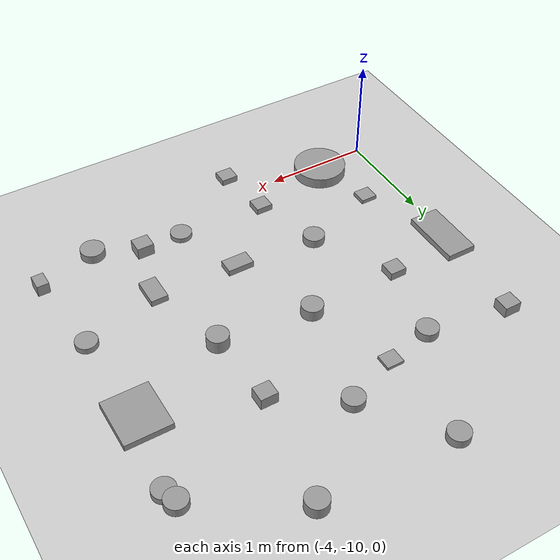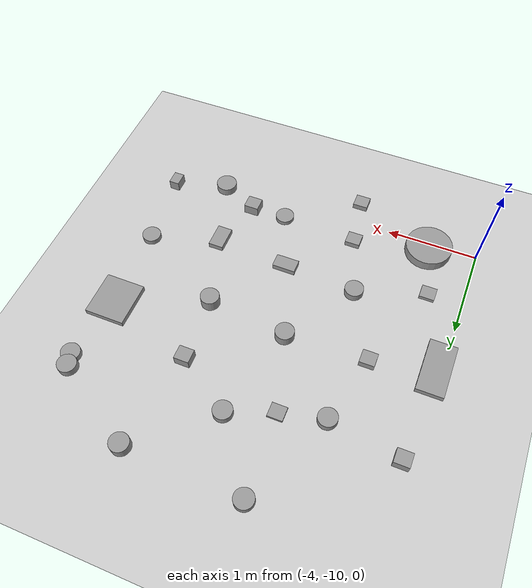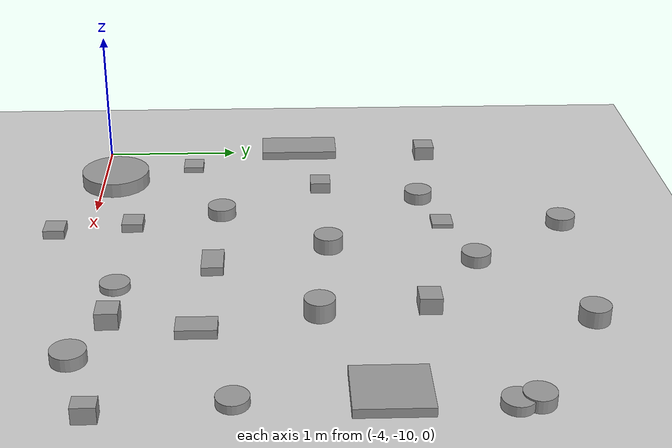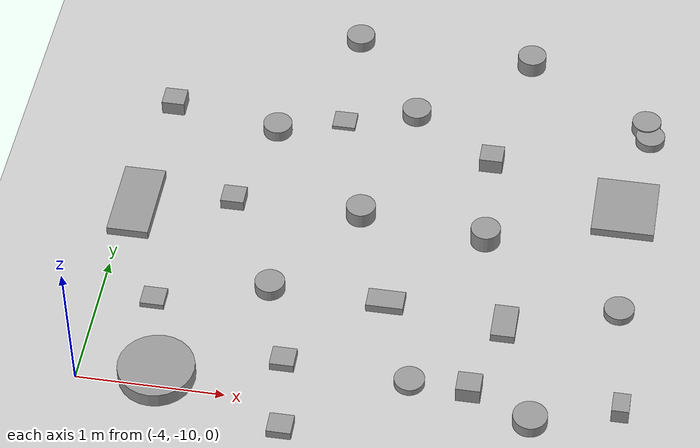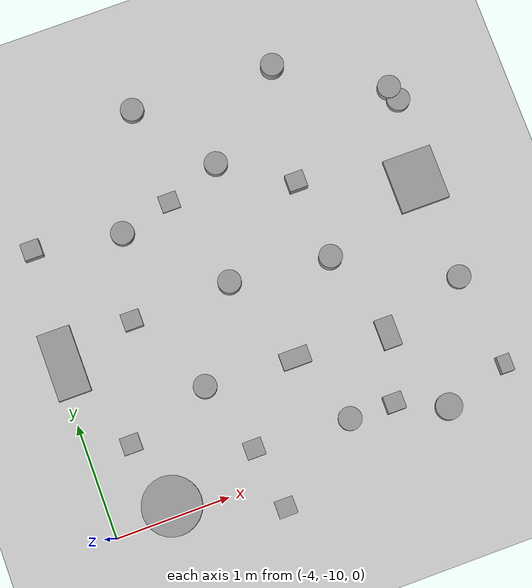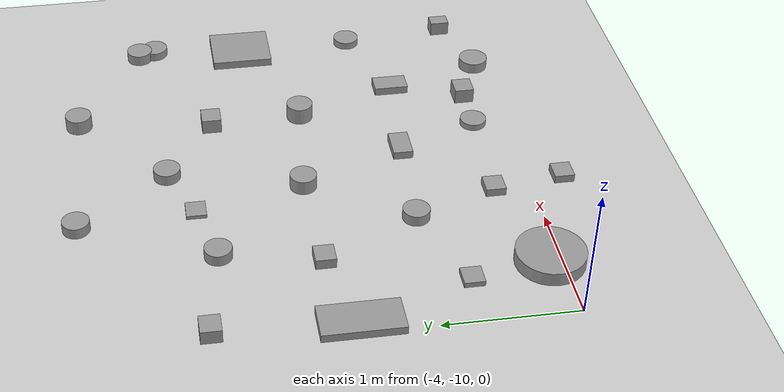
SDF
<sdf version="1.7">
 <world name="default">
  <model name="ground_plane">
   <static>1</static>
   <link name="link">
    <collision name="collision">
     <geometry><plane><normal>0 0 1</normal><size>100 100</size></plane></geometry>
     <surface><friction><ode><mu>100</mu><mu2>50</mu2></ode></friction></surface>
    </collision>
    <visual name="visual">
     <cast_shadows>0</cast_shadows>
     <geometry><plane><normal>0 0 1</normal><size>100 100</size></plane></geometry>
     <material>
      <script><uri>file://media/materials/scripts/gazebo.material</uri><name>Gazebo/Grey</name></script>
     </material>
    </visual>
   </link>
  </model>
  <model name="simple_shapes1">
   <link name="link_2">
    <inertial>
     <mass>0.00363589</mass>
     <inertia>
      <ixx>1.17984e-05</ixx>
      <ixy>0</ixy>
      <ixz>0</ixz>
      <iyy>1.17984e-05</iyy>
      <iyz>0</iyz>
      <izz>1.90177e-05</izz>
     </inertia>
    </inertial>
    <pose>-0.592511 1.91472 -0.006464 0 -0 0</pose>
    <visual name="visual">
     <geometry><cylinder><radius>0.10228</radius><length>0.0869278</length></cylinder></geometry>
     <material>
      <lighting>1</lighting>
      <script><uri>file://media/materials/scripts/gazebo.material</uri><name>Gazebo/Grey</name></script>
      <shader type="pixel"/>
     </material>
    </visual>
    <collision name="collision">
     <geometry><cylinder><radius>0.10228</radius><length>0.086928</length></cylinder></geometry>
     <surface>
      <friction>
       <ode><mu>1</mu><mu2>1</mu2><fdir1>0 0 0</fdir1><slip1>0</slip1><slip2>0</slip2></ode>
       <torsional>
        <coefficient>1</coefficient>
        <patch_radius>0</patch_radius>
        <surface_radius>0</surface_radius>
        <use_patch_radius>1</use_patch_radius>
        <ode><slip>0</slip></ode>
       </torsional>
      </friction>
      <bounce><restitution_coefficient>0</restitution_coefficient><threshold>1e+06</threshold></bounce>
      <contact>
       <collide_without_contact>0</collide_without_contact>
       <collide_without_contact_bitmask>1</collide_without_contact_bitmask>
       <collide_bitmask>1</collide_bitmask>
       <ode>
        <soft_cfm>0</soft_cfm>
        <soft_erp>0.2</soft_erp>
        <kp>1e+13</kp>
        <kd>1</kd>
        <max_vel>0.01</max_vel>
        <min_depth>0</min_depth>
       </ode>
       <bullet>
        <split_impulse>1</split_impulse>
        <split_impulse_penetration_threshold>-0.01</split_impulse_penetration_threshold>
        <soft_cfm>0</soft_cfm>
        <soft_erp>0.2</soft_erp>
        <kp>1e+13</kp>
        <kd>1</kd>
       </bullet>
      </contact>
     </surface>
    </collision>
   </link>
   <link name="link_2_clone">
    <inertial>
     <mass>0.00363589</mass>
     <inertia>
      <ixx>1.17984e-05</ixx>
      <ixy>0</ixy>
      <ixz>0</ixz>
      <iyy>1.17984e-05</iyy>
      <iyz>0</iyz>
      <izz>1.90177e-05</izz>
     </inertia>
    </inertial>
    <pose>-0.073306 1.22185 -0.006465 0 -0 0</pose>
    <visual name="visual">
     <geometry><cylinder><radius>0.10228</radius><length>0.0869278</length></cylinder></geometry>
     <material>
      <lighting>1</lighting>
      <script><uri>file://media/materials/scripts/gazebo.material</uri><name>Gazebo/Grey</name></script>
      <shader type="pixel"/>
     </material>
    </visual>
    <collision name="collision">
     <geometry><cylinder><radius>0.10228</radius><length>0.086928</length></cylinder></geometry>
     <surface>
      <friction>
       <ode><mu>1</mu><mu2>1</mu2><fdir1>0 0 0</fdir1><slip1>0</slip1><slip2>0</slip2></ode>
       <torsional>
        <coefficient>1</coefficient>
        <patch_radius>0</patch_radius>
        <surface_radius>0</surface_radius>
        <use_patch_radius>1</use_patch_radius>
        <ode><slip>0</slip></ode>
       </torsional>
      </friction>
      <bounce><restitution_coefficient>0</restitution_coefficient><threshold>1e+06</threshold></bounce>
      <contact>
       <collide_without_contact>0</collide_without_contact>
       <collide_without_contact_bitmask>1</collide_without_contact_bitmask>
       <collide_bitmask>1</collide_bitmask>
       <ode>
        <soft_cfm>0</soft_cfm>
        <soft_erp>0.2</soft_erp>
        <kp>1e+13</kp>
        <kd>1</kd>
        <max_vel>0.01</max_vel>
        <min_depth>0</min_depth>
       </ode>
       <bullet>
        <split_impulse>1</split_impulse>
        <split_impulse_penetration_threshold>-0.01</split_impulse_penetration_threshold>
        <soft_cfm>0</soft_cfm>
        <soft_erp>0.2</soft_erp>
        <kp>1e+13</kp>
        <kd>1</kd>
       </bullet>
      </contact>
     </surface>
    </collision>
   </link>
   <link name="link_2_clone_0">
    <inertial>
     <mass>0.00513493</mass>
     <inertia>
      <ixx>1.98789e-05</ixx>
      <ixy>0</ixy>
      <ixz>0</ixz>
      <iyy>1.98789e-05</iyy>
      <iyz>0</iyz>
      <izz>2.68587e-05</izz>
     </inertia>
    </inertial>
    <pose>0.680011 1.87196 -0.006465 0 -0 0</pose>
    <visual name="visual">
     <geometry><cylinder><radius>0.10228</radius><length>0.122769</length></cylinder></geometry>
     <material>
      <lighting>1</lighting>
      <script><uri>file://media/materials/scripts/gazebo.material</uri><name>Gazebo/Grey</name></script>
      <shader type="pixel"/>
     </material>
    </visual>
    <collision name="collision">
     <geometry><cylinder><radius>0.10228</radius><length>0.122769</length></cylinder></geometry>
     <surface>
      <friction>
       <ode><mu>1</mu><mu2>1</mu2><fdir1>0 0 0</fdir1><slip1>0</slip1><slip2>0</slip2></ode>
       <torsional>
        <coefficient>1</coefficient>
        <patch_radius>0</patch_radius>
        <surface_radius>0</surface_radius>
        <use_patch_radius>1</use_patch_radius>
        <ode><slip>0</slip></ode>
       </torsional>
      </friction>
      <bounce><restitution_coefficient>0</restitution_coefficient><threshold>1e+06</threshold></bounce>
      <contact>
       <collide_without_contact>0</collide_without_contact>
       <collide_without_contact_bitmask>1</collide_without_contact_bitmask>
       <collide_bitmask>1</collide_bitmask>
       <ode>
        <soft_cfm>0</soft_cfm>
        <soft_erp>0.2</soft_erp>
        <kp>1e+13</kp>
        <kd>1</kd>
        <max_vel>0.01</max_vel>
        <min_depth>0</min_depth>
       </ode>
       <bullet>
        <split_impulse>1</split_impulse>
        <split_impulse_penetration_threshold>-0.01</split_impulse_penetration_threshold>
        <soft_cfm>0</soft_cfm>
        <soft_erp>0.2</soft_erp>
        <kp>1e+13</kp>
        <kd>1</kd>
       </bullet>
      </contact>
     </surface>
    </collision>
   </link>
   <link name="link_2_clone_1">
    <inertial>
     <mass>0.00483955</mass>
     <inertia>
      <ixx>1.80558e-05</ixx>
      <ixy>0</ixy>
      <ixz>0</ixz>
      <iyy>1.80558e-05</iyy>
      <iyz>0</iyz>
      <izz>2.53138e-05</izz>
     </inertia>
    </inertial>
    <pose>-0.313517 0.21125 -0.006465 0 -0 0</pose>
    <visual name="visual">
     <geometry><cylinder><radius>0.10228</radius><length>0.115702</length></cylinder></geometry>
     <material>
      <lighting>1</lighting>
      <script><uri>file://media/materials/scripts/gazebo.material</uri><name>Gazebo/Grey</name></script>
      <shader type="pixel"/>
     </material>
    </visual>
    <collision name="collision">
     <geometry><cylinder><radius>0.10228</radius><length>0.115702</length></cylinder></geometry>
     <surface>
      <friction>
       <ode><mu>1</mu><mu2>1</mu2><fdir1>0 0 0</fdir1><slip1>0</slip1><slip2>0</slip2></ode>
       <torsional>
        <coefficient>1</coefficient>
        <patch_radius>0</patch_radius>
        <surface_radius>0</surface_radius>
        <use_patch_radius>1</use_patch_radius>
        <ode><slip>0</slip></ode>
       </torsional>
      </friction>
      <bounce><restitution_coefficient>0</restitution_coefficient><threshold>1e+06</threshold></bounce>
      <contact>
       <collide_without_contact>0</collide_without_contact>
       <collide_without_contact_bitmask>1</collide_without_contact_bitmask>
       <collide_bitmask>1</collide_bitmask>
       <ode>
        <soft_cfm>0</soft_cfm>
        <soft_erp>0.2</soft_erp>
        <kp>1e+13</kp>
        <kd>1</kd>
        <max_vel>0.01</max_vel>
        <min_depth>0</min_depth>
       </ode>
       <bullet>
        <split_impulse>1</split_impulse>
        <split_impulse_penetration_threshold>-0.01</split_impulse_penetration_threshold>
        <soft_cfm>0</soft_cfm>
        <soft_erp>0.2</soft_erp>
        <kp>1e+13</kp>
        <kd>1</kd>
       </bullet>
      </contact>
     </surface>
    </collision>
   </link>
   <link name="link_2_clone_10">
    <inertial>
     <mass>0.00363589</mass>
     <inertia>
      <ixx>1.17984e-05</ixx>
      <ixy>0</ixy>
      <ixz>0</ixz>
      <iyy>1.17984e-05</iyy>
      <iyz>0</iyz>
      <izz>1.90177e-05</izz>
     </inertia>
    </inertial>
    <pose>1.56501 1.34448 -0.006465 0 -0 0</pose>
    <visual name="visual">
     <geometry><cylinder><radius>0.10228</radius><length>0.0869278</length></cylinder></geometry>
     <material>
      <lighting>1</lighting>
      <script><uri>file://media/materials/scripts/gazebo.material</uri><name>Gazebo/Grey</name></script>
      <shader type="pixel"/>
     </material>
    </visual>
    <collision name="collision">
     <geometry><cylinder><radius>0.10228</radius><length>0.086928</length></cylinder></geometry>
     <surface>
      <friction>
       <ode><mu>1</mu><mu2>1</mu2><fdir1>0 0 0</fdir1><slip1>0</slip1><slip2>0</slip2></ode>
       <torsional>
        <coefficient>1</coefficient>
        <patch_radius>0</patch_radius>
        <surface_radius>0</surface_radius>
        <use_patch_radius>1</use_patch_radius>
        <ode><slip>0</slip></ode>
       </torsional>
      </friction>
      <bounce><restitution_coefficient>0</restitution_coefficient><threshold>1e+06</threshold></bounce>
      <contact>
       <collide_without_contact>0</collide_without_contact>
       <collide_without_contact_bitmask>1</collide_without_contact_bitmask>
       <collide_bitmask>1</collide_bitmask>
       <ode>
        <soft_cfm>0</soft_cfm>
        <soft_erp>0.2</soft_erp>
        <kp>1e+13</kp>
        <kd>1</kd>
        <max_vel>0.01</max_vel>
        <min_depth>0</min_depth>
       </ode>
       <bullet>
        <split_impulse>1</split_impulse>
        <split_impulse_penetration_threshold>-0.01</split_impulse_penetration_threshold>
        <soft_cfm>0</soft_cfm>
        <soft_erp>0.2</soft_erp>
        <kp>1e+13</kp>
        <kd>1</kd>
       </bullet>
      </contact>
     </surface>
    </collision>
   </link>
   <link name="link_2_clone_2">
    <inertial>
     <mass>0.00641705</mass>
     <inertia>
      <ixx>2.93698e-05</ixx>
      <ixy>0</ixy>
      <ixz>0</ixz>
      <iyy>2.93698e-05</iyy>
      <iyz>0</iyz>
      <izz>3.3565e-05</izz>
     </inertia>
    </inertial>
    <pose>0.568027 0.11838 -0.006465 0 -0 0</pose>
    <visual name="visual">
     <geometry><cylinder><radius>0.10228</radius><length>0.153422</length></cylinder></geometry>
     <material>
      <lighting>1</lighting>
      <script><uri>file://media/materials/scripts/gazebo.material</uri><name>Gazebo/Grey</name></script>
      <shader type="pixel"/>
     </material>
    </visual>
    <collision name="collision">
     <geometry><cylinder><radius>0.10228</radius><length>0.153422</length></cylinder></geometry>
     <surface>
      <friction>
       <ode><mu>1</mu><mu2>1</mu2><fdir1>0 0 0</fdir1><slip1>0</slip1><slip2>0</slip2></ode>
       <torsional>
        <coefficient>1</coefficient>
        <patch_radius>0</patch_radius>
        <surface_radius>0</surface_radius>
        <use_patch_radius>1</use_patch_radius>
        <ode><slip>0</slip></ode>
       </torsional>
      </friction>
      <bounce><restitution_coefficient>0</restitution_coefficient><threshold>1e+06</threshold></bounce>
      <contact>
       <collide_without_contact>0</collide_without_contact>
       <collide_without_contact_bitmask>1</collide_without_contact_bitmask>
       <collide_bitmask>1</collide_bitmask>
       <ode>
        <soft_cfm>0</soft_cfm>
        <soft_erp>0.2</soft_erp>
        <kp>1e+13</kp>
        <kd>1</kd>
        <max_vel>0.01</max_vel>
        <min_depth>0</min_depth>
       </ode>
       <bullet>
        <split_impulse>1</split_impulse>
        <split_impulse_penetration_threshold>-0.01</split_impulse_penetration_threshold>
        <soft_cfm>0</soft_cfm>
        <soft_erp>0.2</soft_erp>
        <kp>1e+13</kp>
        <kd>1</kd>
       </bullet>
      </contact>
     </surface>
    </collision>
   </link>
   <link name="link_2_clone_3">
    <inertial>
     <mass>0.00363589</mass>
     <inertia>
      <ixx>1.17984e-05</ixx>
      <ixy>0</ixy>
      <ixz>0</ixz>
      <iyy>1.17984e-05</iyy>
      <iyz>0</iyz>
      <izz>1.90177e-05</izz>
     </inertia>
    </inertial>
    <pose>-1.02968 0.920637 -0.006465 0 -0 0</pose>
    <visual name="visual">
     <geometry><cylinder><radius>0.10228</radius><length>0.0869278</length></cylinder></geometry>
     <material>
      <lighting>1</lighting>
      <script><uri>file://media/materials/scripts/gazebo.material</uri><name>Gazebo/Grey</name></script>
      <shader type="pixel"/>
     </material>
    </visual>
    <collision name="collision">
     <geometry><cylinder><radius>0.10228</radius><length>0.086928</length></cylinder></geometry>
     <surface>
      <friction>
       <ode><mu>1</mu><mu2>1</mu2><fdir1>0 0 0</fdir1><slip1>0</slip1><slip2>0</slip2></ode>
       <torsional>
        <coefficient>1</coefficient>
        <patch_radius>0</patch_radius>
        <surface_radius>0</surface_radius>
        <use_patch_radius>1</use_patch_radius>
        <ode><slip>0</slip></ode>
       </torsional>
      </friction>
      <bounce><restitution_coefficient>0</restitution_coefficient><threshold>1e+06</threshold></bounce>
      <contact>
       <collide_without_contact>0</collide_without_contact>
       <collide_without_contact_bitmask>1</collide_without_contact_bitmask>
       <collide_bitmask>1</collide_bitmask>
       <ode>
        <soft_cfm>0</soft_cfm>
        <soft_erp>0.2</soft_erp>
        <kp>1e+13</kp>
        <kd>1</kd>
        <max_vel>0.01</max_vel>
        <min_depth>0</min_depth>
       </ode>
       <bullet>
        <split_impulse>1</split_impulse>
        <split_impulse_penetration_threshold>-0.01</split_impulse_penetration_threshold>
        <soft_cfm>0</soft_cfm>
        <soft_erp>0.2</soft_erp>
        <kp>1e+13</kp>
        <kd>1</kd>
       </bullet>
      </contact>
     </surface>
    </collision>
   </link>
   <link name="link_2_clone_4">
    <inertial>
     <mass>0.00251248</mass>
     <inertia>
      <ixx>7.32634e-06</ixx>
      <ixy>0</ixy>
      <ixz>0</ixz>
      <iyy>7.32634e-06</iyy>
      <iyz>0</iyz>
      <izz>1.31418e-05</izz>
     </inertia>
    </inertial>
    <pose>1.53819 -0.414887 -0.006465 0 -0 0</pose>
    <visual name="visual">
     <geometry><cylinder><radius>0.10228</radius><length>0.0600685</length></cylinder></geometry>
     <material>
      <lighting>1</lighting>
      <script><uri>file://media/materials/scripts/gazebo.material</uri><name>Gazebo/Grey</name></script>
      <shader type="pixel"/>
     </material>
    </visual>
    <collision name="collision">
     <geometry><cylinder><radius>0.10228</radius><length>0.060068</length></cylinder></geometry>
     <surface>
      <friction>
       <ode><mu>1</mu><mu2>1</mu2><fdir1>0 0 0</fdir1><slip1>0</slip1><slip2>0</slip2></ode>
       <torsional>
        <coefficient>1</coefficient>
        <patch_radius>0</patch_radius>
        <surface_radius>0</surface_radius>
        <use_patch_radius>1</use_patch_radius>
        <ode><slip>0</slip></ode>
       </torsional>
      </friction>
      <bounce><restitution_coefficient>0</restitution_coefficient><threshold>1e+06</threshold></bounce>
      <contact>
       <collide_without_contact>0</collide_without_contact>
       <collide_without_contact_bitmask>1</collide_without_contact_bitmask>
       <collide_bitmask>1</collide_bitmask>
       <ode>
        <soft_cfm>0</soft_cfm>
        <soft_erp>0.2</soft_erp>
        <kp>1e+13</kp>
        <kd>1</kd>
        <max_vel>0.01</max_vel>
        <min_depth>0</min_depth>
       </ode>
       <bullet>
        <split_impulse>1</split_impulse>
        <split_impulse_penetration_threshold>-0.01</split_impulse_penetration_threshold>
        <soft_cfm>0</soft_cfm>
        <soft_erp>0.2</soft_erp>
        <kp>1e+13</kp>
        <kd>1</kd>
       </bullet>
      </contact>
     </surface>
    </collision>
   </link>
   <link name="link_2_clone_5">
    <inertial>
     <mass>0.00363589</mass>
     <inertia>
      <ixx>1.17984e-05</ixx>
      <ixy>0</ixy>
      <ixz>0</ixz>
      <iyy>1.17984e-05</iyy>
      <iyz>0</iyz>
      <izz>1.90177e-05</izz>
     </inertia>
    </inertial>
    <pose>-0.809101 -0.554909 -0.006465 0 -0 0</pose>
    <visual name="visual">
     <geometry><cylinder><radius>0.10228</radius><length>0.0869278</length></cylinder></geometry>
     <material>
      <lighting>1</lighting>
      <script><uri>file://media/materials/scripts/gazebo.material</uri><name>Gazebo/Grey</name></script>
      <shader type="pixel"/>
     </material>
    </visual>
    <collision name="collision">
     <geometry><cylinder><radius>0.10228</radius><length>0.086928</length></cylinder></geometry>
     <surface>
      <friction>
       <ode><mu>1</mu><mu2>1</mu2><fdir1>0 0 0</fdir1><slip1>0</slip1><slip2>0</slip2></ode>
       <torsional>
        <coefficient>1</coefficient>
        <patch_radius>0</patch_radius>
        <surface_radius>0</surface_radius>
        <use_patch_radius>1</use_patch_radius>
        <ode><slip>0</slip></ode>
       </torsional>
      </friction>
      <bounce><restitution_coefficient>0</restitution_coefficient><threshold>1e+06</threshold></bounce>
      <contact>
       <collide_without_contact>0</collide_without_contact>
       <collide_without_contact_bitmask>1</collide_without_contact_bitmask>
       <collide_bitmask>1</collide_bitmask>
       <ode>
        <soft_cfm>0</soft_cfm>
        <soft_erp>0.2</soft_erp>
        <kp>1e+13</kp>
        <kd>1</kd>
        <max_vel>0.01</max_vel>
        <min_depth>0</min_depth>
       </ode>
       <bullet>
        <split_impulse>1</split_impulse>
        <split_impulse_penetration_threshold>-0.01</split_impulse_penetration_threshold>
        <soft_cfm>0</soft_cfm>
        <soft_erp>0.2</soft_erp>
        <kp>1e+13</kp>
        <kd>1</kd>
       </bullet>
      </contact>
     </surface>
    </collision>
   </link>
   <link name="link_2_clone_6">
    <inertial>
     <mass>0.00281866</mass>
     <inertia>
      <ixx>8.43845e-06</ixx>
      <ixy>0</ixy>
      <ixz>0</ixz>
      <iyy>8.43845e-06</iyy>
      <iyz>0</iyz>
      <izz>1.47433e-05</izz>
     </inertia>
    </inertial>
    <pose>1.60311 1.21482 -0.006465 0 -0 0</pose>
    <visual name="visual">
     <geometry><cylinder><radius>0.10228</radius><length>0.0673927</length></cylinder></geometry>
     <material>
      <lighting>1</lighting>
      <script><uri>file://media/materials/scripts/gazebo.material</uri><name>Gazebo/Grey</name></script>
      <shader type="pixel"/>
     </material>
    </visual>
    <collision name="collision">
     <geometry><cylinder><radius>0.10228</radius><length>0.067393</length></cylinder></geometry>
     <surface>
      <friction>
       <ode><mu>1</mu><mu2>1</mu2><fdir1>0 0 0</fdir1><slip1>0</slip1><slip2>0</slip2></ode>
       <torsional>
        <coefficient>1</coefficient>
        <patch_radius>0</patch_radius>
        <surface_radius>0</surface_radius>
        <use_patch_radius>1</use_patch_radius>
        <ode><slip>0</slip></ode>
       </torsional>
      </friction>
      <bounce><restitution_coefficient>0</restitution_coefficient><threshold>1e+06</threshold></bounce>
      <contact>
       <collide_without_contact>0</collide_without_contact>
       <collide_without_contact_bitmask>1</collide_without_contact_bitmask>
       <collide_bitmask>1</collide_bitmask>
       <ode>
        <soft_cfm>0</soft_cfm>
        <soft_erp>0.2</soft_erp>
        <kp>1e+13</kp>
        <kd>1</kd>
        <max_vel>0.01</max_vel>
        <min_depth>0</min_depth>
       </ode>
       <bullet>
        <split_impulse>1</split_impulse>
        <split_impulse_penetration_threshold>-0.01</split_impulse_penetration_threshold>
        <soft_cfm>0</soft_cfm>
        <soft_erp>0.2</soft_erp>
        <kp>1e+13</kp>
        <kd>1</kd>
       </bullet>
      </contact>
     </surface>
    </collision>
   </link>
   <link name="link_2_clone_7">
    <inertial>
     <mass>0.00214991</mass>
     <inertia>
      <ixx>6.09601e-06</ixx>
      <ixy>0</ixy>
      <ixz>0</ixz>
      <iyy>6.09601e-06</iyy>
      <iyz>0</iyz>
      <izz>1.12453e-05</izz>
     </inertia>
    </inertial>
    <pose>0.243955 -1.2271 -0.006465 0 -0 0</pose>
    <visual name="visual">
     <geometry><cylinder><radius>0.10228</radius><length>0.051401</length></cylinder></geometry>
     <material>
      <lighting>1</lighting>
      <script><uri>file://media/materials/scripts/gazebo.material</uri><name>Gazebo/Grey</name></script>
      <shader type="pixel"/>
     </material>
    </visual>
    <collision name="collision">
     <geometry><cylinder><radius>0.10228</radius><length>0.051401</length></cylinder></geometry>
     <surface>
      <friction>
       <ode><mu>1</mu><mu2>1</mu2><fdir1>0 0 0</fdir1><slip1>0</slip1><slip2>0</slip2></ode>
       <torsional>
        <coefficient>1</coefficient>
        <patch_radius>0</patch_radius>
        <surface_radius>0</surface_radius>
        <use_patch_radius>1</use_patch_radius>
        <ode><slip>0</slip></ode>
       </torsional>
      </friction>
      <bounce><restitution_coefficient>0</restitution_coefficient><threshold>1e+06</threshold></bounce>
      <contact>
       <collide_without_contact>0</collide_without_contact>
       <collide_without_contact_bitmask>1</collide_without_contact_bitmask>
       <collide_bitmask>1</collide_bitmask>
       <ode>
        <soft_cfm>0</soft_cfm>
        <soft_erp>0.2</soft_erp>
        <kp>1e+13</kp>
        <kd>1</kd>
        <max_vel>0.01</max_vel>
        <min_depth>0</min_depth>
       </ode>
       <bullet>
        <split_impulse>1</split_impulse>
        <split_impulse_penetration_threshold>-0.01</split_impulse_penetration_threshold>
        <soft_cfm>0</soft_cfm>
        <soft_erp>0.2</soft_erp>
        <kp>1e+13</kp>
        <kd>1</kd>
       </bullet>
      </contact>
     </surface>
    </collision>
   </link>
   <link name="link_2_clone_8">
    <inertial>
     <mass>0.028389</mass>
     <inertia>
      <ixx>0.000496216</ixx>
      <ixy>0</ixy>
      <ixz>0</ixz>
      <iyy>0.000496216</iyy>
      <iyz>0</iyz>
      <izz>0.000937758</izz>
     </inertia>
    </inertial>
    <pose>-1.40546 -1.39967 -0.006465 0 -0 0</pose>
    <visual name="visual">
     <geometry><cylinder><radius>0.257031</radius><length>0.107495</length></cylinder></geometry>
     <material>
      <lighting>1</lighting>
      <script><uri>file://media/materials/scripts/gazebo.material</uri><name>Gazebo/Grey</name></script>
      <shader type="pixel"/>
     </material>
    </visual>
    <collision name="collision">
     <geometry><cylinder><radius>0.257031</radius><length>0.107495</length></cylinder></geometry>
     <surface>
      <friction>
       <ode><mu>1</mu><mu2>1</mu2><fdir1>0 0 0</fdir1><slip1>0</slip1><slip2>0</slip2></ode>
       <torsional>
        <coefficient>1</coefficient>
        <patch_radius>0</patch_radius>
        <surface_radius>0</surface_radius>
        <use_patch_radius>1</use_patch_radius>
        <ode><slip>0</slip></ode>
       </torsional>
      </friction>
      <bounce><restitution_coefficient>0</restitution_coefficient><threshold>1e+06</threshold></bounce>
      <contact>
       <collide_without_contact>0</collide_without_contact>
       <collide_without_contact_bitmask>1</collide_without_contact_bitmask>
       <collide_bitmask>1</collide_bitmask>
       <ode>
        <soft_cfm>0</soft_cfm>
        <soft_erp>0.2</soft_erp>
        <kp>1e+13</kp>
        <kd>1</kd>
        <max_vel>0.01</max_vel>
        <min_depth>0</min_depth>
       </ode>
       <bullet>
        <split_impulse>1</split_impulse>
        <split_impulse_penetration_threshold>-0.01</split_impulse_penetration_threshold>
        <soft_cfm>0</soft_cfm>
        <soft_erp>0.2</soft_erp>
        <kp>1e+13</kp>
        <kd>1</kd>
       </bullet>
      </contact>
     </surface>
    </collision>
   </link>
   <link name="link_2_clone_9">
    <inertial>
     <mass>0.00457361</mass>
     <inertia>
      <ixx>1.79272e-05</ixx>
      <ixy>0</ixy>
      <ixz>0</ixz>
      <iyy>1.79272e-05</iyy>
      <iyz>0</iyz>
      <izz>3.00944e-05</izz>
     </inertia>
    </inertial>
    <pose>1.05934 -1.41819 -0.006465 0 -0 0</pose>
    <visual name="visual">
     <geometry><cylinder><radius>0.114717</radius><length>0.0869278</length></cylinder></geometry>
     <material>
      <lighting>1</lighting>
      <script><uri>file://media/materials/scripts/gazebo.material</uri><name>Gazebo/Grey</name></script>
      <shader type="pixel"/>
     </material>
    </visual>
    <collision name="collision">
     <geometry><cylinder><radius>0.114717</radius><length>0.086928</length></cylinder></geometry>
     <surface>
      <friction>
       <ode><mu>1</mu><mu2>1</mu2><fdir1>0 0 0</fdir1><slip1>0</slip1><slip2>0</slip2></ode>
       <torsional>
        <coefficient>1</coefficient>
        <patch_radius>0</patch_radius>
        <surface_radius>0</surface_radius>
        <use_patch_radius>1</use_patch_radius>
        <ode><slip>0</slip></ode>
       </torsional>
      </friction>
      <bounce><restitution_coefficient>0</restitution_coefficient><threshold>1e+06</threshold></bounce>
      <contact>
       <collide_without_contact>0</collide_without_contact>
       <collide_without_contact_bitmask>1</collide_without_contact_bitmask>
       <collide_bitmask>1</collide_bitmask>
       <ode>
        <soft_cfm>0</soft_cfm>
        <soft_erp>0.2</soft_erp>
        <kp>1e+13</kp>
        <kd>1</kd>
        <max_vel>0.01</max_vel>
        <min_depth>0</min_depth>
       </ode>
       <bullet>
        <split_impulse>1</split_impulse>
        <split_impulse_penetration_threshold>-0.01</split_impulse_penetration_threshold>
        <soft_cfm>0</soft_cfm>
        <soft_erp>0.2</soft_erp>
        <kp>1e+13</kp>
        <kd>1</kd>
       </bullet>
      </contact>
     </surface>
    </collision>
   </link>
   <link name="link_4">
    <inertial>
     <mass>0.00152914</mass>
     <inertia>
      <ixx>3.39923e-06</ixx>
      <ixy>0</ixy>
      <ixz>0</ixz>
      <iyy>3.84039e-06</iyy>
      <iyz>0</iyz>
      <izz>6.23535e-06</izz>
     </inertia>
    </inertial>
    <pose>-0.517427 -1.73617 0.006464 0 -0 0</pose>
    <visual name="visual">
     <geometry><box><size>0.161855 0.150782 0.062774</size></box></geometry>
     <material>
      <lighting>1</lighting>
      <script><uri>file://media/materials/scripts/gazebo.material</uri><name>Gazebo/Grey</name></script>
      <shader type="pixel"/>
     </material>
    </visual>
    <collision name="collision">
     <geometry><box><size>0.161855 0.150782 0.062774</size></box></geometry>
     <surface>
      <friction>
       <ode><mu>1</mu><mu2>1</mu2><fdir1>0 0 0</fdir1><slip1>0</slip1><slip2>0</slip2></ode>
       <torsional>
        <coefficient>1</coefficient>
        <patch_radius>0</patch_radius>
        <surface_radius>0</surface_radius>
        <use_patch_radius>1</use_patch_radius>
        <ode><slip>0</slip></ode>
       </torsional>
      </friction>
      <bounce><restitution_coefficient>0</restitution_coefficient><threshold>1e+06</threshold></bounce>
      <contact>
       <collide_without_contact>0</collide_without_contact>
       <collide_without_contact_bitmask>1</collide_without_contact_bitmask>
       <collide_bitmask>1</collide_bitmask>
       <ode>
        <soft_cfm>0</soft_cfm>
        <soft_erp>0.2</soft_erp>
        <kp>1e+13</kp>
        <kd>1</kd>
        <max_vel>0.01</max_vel>
        <min_depth>0</min_depth>
       </ode>
       <bullet>
        <split_impulse>1</split_impulse>
        <split_impulse_penetration_threshold>-0.01</split_impulse_penetration_threshold>
        <soft_cfm>0</soft_cfm>
        <soft_erp>0.2</soft_erp>
        <kp>1e+13</kp>
        <kd>1</kd>
       </bullet>
      </contact>
     </surface>
    </collision>
   </link>
   <link name="link_4_clone">
    <inertial>
     <mass>0.00288823</mass>
     <inertia>
      <ixx>8.85558e-06</ixx>
      <ixy>0</ixy>
      <ixz>0</ixz>
      <iyy>9.68879e-06</iyy>
      <iyz>0</iyz>
      <izz>1.17773e-05</izz>
     </inertia>
    </inertial>
    <pose>0.637351 -1.22965 0.006465 0 -0 0</pose>
    <visual name="visual">
     <geometry><box><size>0.161855 0.150782 0.118566</size></box></geometry>
     <material>
      <lighting>1</lighting>
      <script><uri>file://media/materials/scripts/gazebo.material</uri><name>Gazebo/Grey</name></script>
      <shader type="pixel"/>
     </material>
    </visual>
    <collision name="collision">
     <geometry><box><size>0.161855 0.150782 0.118566</size></box></geometry>
     <surface>
      <friction>
       <ode><mu>1</mu><mu2>1</mu2><fdir1>0 0 0</fdir1><slip1>0</slip1><slip2>0</slip2></ode>
       <torsional>
        <coefficient>1</coefficient>
        <patch_radius>0</patch_radius>
        <surface_radius>0</surface_radius>
        <use_patch_radius>1</use_patch_radius>
        <ode><slip>0</slip></ode>
       </torsional>
      </friction>
      <bounce><restitution_coefficient>0</restitution_coefficient><threshold>1e+06</threshold></bounce>
      <contact>
       <collide_without_contact>0</collide_without_contact>
       <collide_without_contact_bitmask>1</collide_without_contact_bitmask>
       <collide_bitmask>1</collide_bitmask>
       <ode>
        <soft_cfm>0</soft_cfm>
        <soft_erp>0.2</soft_erp>
        <kp>1e+13</kp>
        <kd>1</kd>
        <max_vel>0.01</max_vel>
        <min_depth>0</min_depth>
       </ode>
       <bullet>
        <split_impulse>1</split_impulse>
        <split_impulse_penetration_threshold>-0.01</split_impulse_penetration_threshold>
        <soft_cfm>0</soft_cfm>
        <soft_erp>0.2</soft_erp>
        <kp>1e+13</kp>
        <kd>1</kd>
       </bullet>
      </contact>
     </surface>
    </collision>
   </link>
   <link name="link_4_clone_0">
    <inertial>
     <mass>0.00237278</mass>
     <inertia>
      <ixx>5.27466e-06</ixx>
      <ixy>0</ixy>
      <ixz>0</ixz>
      <iyy>1.32517e-05</iyy>
      <iyz>0</iyz>
      <izz>1.6968e-05</izz>
     </inertia>
    </inertial>
    <pose>-0.012817 -0.590038 0.006465 0 -0 0</pose>
    <visual name="visual">
     <geometry><box><size>0.251153 0.150782 0.062774</size></box></geometry>
     <material>
      <lighting>1</lighting>
      <script><uri>file://media/materials/scripts/gazebo.material</uri><name>Gazebo/Grey</name></script>
      <shader type="pixel"/>
     </material>
    </visual>
    <collision name="collision">
     <geometry><box><size>0.251153 0.150782 0.062774</size></box></geometry>
     <surface>
      <friction>
       <ode><mu>1</mu><mu2>1</mu2><fdir1>0 0 0</fdir1><slip1>0</slip1><slip2>0</slip2></ode>
       <torsional>
        <coefficient>1</coefficient>
        <patch_radius>0</patch_radius>
        <surface_radius>0</surface_radius>
        <use_patch_radius>1</use_patch_radius>
        <ode><slip>0</slip></ode>
       </torsional>
      </friction>
      <bounce><restitution_coefficient>0</restitution_coefficient><threshold>1e+06</threshold></bounce>
      <contact>
       <collide_without_contact>0</collide_without_contact>
       <collide_without_contact_bitmask>1</collide_without_contact_bitmask>
       <collide_bitmask>1</collide_bitmask>
       <ode>
        <soft_cfm>0</soft_cfm>
        <soft_erp>0.2</soft_erp>
        <kp>1e+13</kp>
        <kd>1</kd>
        <max_vel>0.01</max_vel>
        <min_depth>0</min_depth>
       </ode>
       <bullet>
        <split_impulse>1</split_impulse>
        <split_impulse_penetration_threshold>-0.01</split_impulse_penetration_threshold>
        <soft_cfm>0</soft_cfm>
        <soft_erp>0.2</soft_erp>
        <kp>1e+13</kp>
        <kd>1</kd>
       </bullet>
      </contact>
     </surface>
    </collision>
   </link>
   <link name="link_4_clone_1">
    <inertial>
     <mass>0.00284268</mass>
     <inertia>
      <ixx>8.61199e-06</ixx>
      <ixy>0</ixy>
      <ixz>0</ixz>
      <iyy>9.43206e-06</iyy>
      <iyz>0</iyz>
      <izz>1.15916e-05</izz>
     </inertia>
    </inertial>
    <pose>0.519392 0.833443 0.006465 0 -0 0</pose>
    <visual name="visual">
     <geometry><box><size>0.161855 0.150782 0.116701</size></box></geometry>
     <material>
      <lighting>1</lighting>
      <script><uri>file://media/materials/scripts/gazebo.material</uri><name>Gazebo/Grey</name></script>
      <shader type="pixel"/>
     </material>
    </visual>
    <collision name="collision">
     <geometry><box><size>0.161855 0.150782 0.116701</size></box></geometry>
     <surface>
      <friction>
       <ode><mu>1</mu><mu2>1</mu2><fdir1>0 0 0</fdir1><slip1>0</slip1><slip2>0</slip2></ode>
       <torsional>
        <coefficient>1</coefficient>
        <patch_radius>0</patch_radius>
        <surface_radius>0</surface_radius>
        <use_patch_radius>1</use_patch_radius>
        <ode><slip>0</slip></ode>
       </torsional>
      </friction>
      <bounce><restitution_coefficient>0</restitution_coefficient><threshold>1e+06</threshold></bounce>
      <contact>
       <collide_without_contact>0</collide_without_contact>
       <collide_without_contact_bitmask>1</collide_without_contact_bitmask>
       <collide_bitmask>1</collide_bitmask>
       <ode>
        <soft_cfm>0</soft_cfm>
        <soft_erp>0.2</soft_erp>
        <kp>1e+13</kp>
        <kd>1</kd>
        <max_vel>0.01</max_vel>
        <min_depth>0</min_depth>
       </ode>
       <bullet>
        <split_impulse>1</split_impulse>
        <split_impulse_penetration_threshold>-0.01</split_impulse_penetration_threshold>
        <soft_cfm>0</soft_cfm>
        <soft_erp>0.2</soft_erp>
        <kp>1e+13</kp>
        <kd>1</kd>
       </bullet>
      </contact>
     </surface>
    </collision>
   </link>
   <link name="link_4_clone_10">
    <inertial>
     <mass>0.00261721</mass>
     <inertia>
      <ixx>7.47628e-06</ixx>
      <ixy>0</ixy>
      <ixz>0</ixz>
      <iyy>8.23131e-06</iyy>
      <iyz>0</iyz>
      <izz>1.06722e-05</izz>
     </inertia>
    </inertial>
    <pose>-1.80272 1.04499 0.006465 0 -0 0</pose>
    <visual name="visual">
     <geometry><box><size>0.161855 0.150782 0.107442</size></box></geometry>
     <material>
      <lighting>1</lighting>
      <script><uri>file://media/materials/scripts/gazebo.material</uri><name>Gazebo/Grey</name></script>
      <shader type="pixel"/>
     </material>
    </visual>
    <collision name="collision">
     <geometry><box><size>0.161855 0.150782 0.107442</size></box></geometry>
     <surface>
      <friction>
       <ode><mu>1</mu><mu2>1</mu2><fdir1>0 0 0</fdir1><slip1>0</slip1><slip2>0</slip2></ode>
       <torsional>
        <coefficient>1</coefficient>
        <patch_radius>0</patch_radius>
        <surface_radius>0</surface_radius>
        <use_patch_radius>1</use_patch_radius>
        <ode><slip>0</slip></ode>
       </torsional>
      </friction>
      <bounce><restitution_coefficient>0</restitution_coefficient><threshold>1e+06</threshold></bounce>
      <contact>
       <collide_without_contact>0</collide_without_contact>
       <collide_without_contact_bitmask>1</collide_without_contact_bitmask>
       <collide_bitmask>1</collide_bitmask>
       <ode>
        <soft_cfm>0</soft_cfm>
        <soft_erp>0.2</soft_erp>
        <kp>1e+13</kp>
        <kd>1</kd>
        <max_vel>0.01</max_vel>
        <min_depth>0</min_depth>
       </ode>
       <bullet>
        <split_impulse>1</split_impulse>
        <split_impulse_penetration_threshold>-0.01</split_impulse_penetration_threshold>
        <soft_cfm>0</soft_cfm>
        <soft_erp>0.2</soft_erp>
        <kp>1e+13</kp>
        <kd>1</kd>
       </bullet>
      </contact>
     </surface>
    </collision>
   </link>
   <link name="link_4_clone_2">
    <inertial>
     <mass>0.000709531</mass>
     <inertia>
      <ixx>1.39444e-06</ixx>
      <ixy>0</ixy>
      <ixz>0</ixz>
      <iyy>1.59913e-06</iyy>
      <iyz>0</iyz>
      <izz>2.89325e-06</izz>
     </inertia>
    </inertial>
    <pose>-0.562803 1.04161 0.006465 0 -0 0</pose>
    <visual name="visual">
     <geometry><box><size>0.161855 0.150782 0.029128</size></box></geometry>
     <material>
      <lighting>1</lighting>
      <script><uri>file://media/materials/scripts/gazebo.material</uri><name>Gazebo/Grey</name></script>
      <shader type="pixel"/>
     </material>
    </visual>
    <collision name="collision">
     <geometry><box><size>0.161855 0.150782 0.029128</size></box></geometry>
     <surface>
      <friction>
       <ode><mu>1</mu><mu2>1</mu2><fdir1>0 0 0</fdir1><slip1>0</slip1><slip2>0</slip2></ode>
       <torsional>
        <coefficient>1</coefficient>
        <patch_radius>0</patch_radius>
        <surface_radius>0</surface_radius>
        <use_patch_radius>1</use_patch_radius>
        <ode><slip>0</slip></ode>
       </torsional>
      </friction>
      <bounce><restitution_coefficient>0</restitution_coefficient><threshold>1e+06</threshold></bounce>
      <contact>
       <collide_without_contact>0</collide_without_contact>
       <collide_without_contact_bitmask>1</collide_without_contact_bitmask>
       <collide_bitmask>1</collide_bitmask>
       <ode>
        <soft_cfm>0</soft_cfm>
        <soft_erp>0.2</soft_erp>
        <kp>1e+13</kp>
        <kd>1</kd>
        <max_vel>0.01</max_vel>
        <min_depth>0</min_depth>
       </ode>
       <bullet>
        <split_impulse>1</split_impulse>
        <split_impulse_penetration_threshold>-0.01</split_impulse_penetration_threshold>
        <soft_cfm>0</soft_cfm>
        <soft_erp>0.2</soft_erp>
        <kp>1e+13</kp>
        <kd>1</kd>
       </bullet>
      </contact>
     </surface>
    </collision>
   </link>
   <link name="link_4_clone_3">
    <inertial>
     <mass>0.00193465</mass>
     <inertia>
      <ixx>4.68232e-06</ixx>
      <ixy>0</ixy>
      <ixz>0</ixz>
      <iyy>5.24044e-06</iyy>
      <iyz>0</iyz>
      <izz>7.88892e-06</izz>
     </inertia>
    </inertial>
    <pose>-1.2015 0.185121 0.006465 0 -0 0</pose>
    <visual name="visual">
     <geometry><box><size>0.161855 0.150782 0.07942</size></box></geometry>
     <material>
      <lighting>1</lighting>
      <script><uri>file://media/materials/scripts/gazebo.material</uri><name>Gazebo/Grey</name></script>
      <shader type="pixel"/>
     </material>
    </visual>
    <collision name="collision">
     <geometry><box><size>0.161855 0.150782 0.07942</size></box></geometry>
     <surface>
      <friction>
       <ode><mu>1</mu><mu2>1</mu2><fdir1>0 0 0</fdir1><slip1>0</slip1><slip2>0</slip2></ode>
       <torsional>
        <coefficient>1</coefficient>
        <patch_radius>0</patch_radius>
        <surface_radius>0</surface_radius>
        <use_patch_radius>1</use_patch_radius>
        <ode><slip>0</slip></ode>
       </torsional>
      </friction>
      <bounce><restitution_coefficient>0</restitution_coefficient><threshold>1e+06</threshold></bounce>
      <contact>
       <collide_without_contact>0</collide_without_contact>
       <collide_without_contact_bitmask>1</collide_without_contact_bitmask>
       <collide_bitmask>1</collide_bitmask>
       <ode>
        <soft_cfm>0</soft_cfm>
        <soft_erp>0.2</soft_erp>
        <kp>1e+13</kp>
        <kd>1</kd>
        <max_vel>0.01</max_vel>
        <min_depth>0</min_depth>
       </ode>
       <bullet>
        <split_impulse>1</split_impulse>
        <split_impulse_penetration_threshold>-0.01</split_impulse_penetration_threshold>
        <soft_cfm>0</soft_cfm>
        <soft_erp>0.2</soft_erp>
        <kp>1e+13</kp>
        <kd>1</kd>
       </bullet>
      </contact>
     </surface>
    </collision>
   </link>
   <link name="link_4_clone_4">
    <inertial>
     <mass>0.0130255</mass>
     <inertia>
      <ixx>0.000256429</ixx>
      <ixy>0</ixy>
      <ixz>0</ixz>
      <iyy>0.000206212</iyy>
      <iyz>0</iyz>
      <izz>0.000454086</izz>
     </inertia>
    </inertial>
    <pose>1.493 0.499383 0.006465 0 -0 0</pose>
    <visual name="visual">
     <geometry><box><size>0.431319 0.481975 0.062774</size></box></geometry>
     <material>
      <lighting>1</lighting>
      <script><uri>file://media/materials/scripts/gazebo.material</uri><name>Gazebo/Grey</name></script>
      <shader type="pixel"/>
     </material>
    </visual>
    <collision name="collision">
     <geometry><box><size>0.431319 0.481975 0.062774</size></box></geometry>
     <surface>
      <friction>
       <ode><mu>1</mu><mu2>1</mu2><fdir1>0 0 0</fdir1><slip1>0</slip1><slip2>0</slip2></ode>
       <torsional>
        <coefficient>1</coefficient>
        <patch_radius>0</patch_radius>
        <surface_radius>0</surface_radius>
        <use_patch_radius>1</use_patch_radius>
        <ode><slip>0</slip></ode>
       </torsional>
      </friction>
      <bounce><restitution_coefficient>0</restitution_coefficient><threshold>1e+06</threshold></bounce>
      <contact>
       <collide_without_contact>0</collide_without_contact>
       <collide_without_contact_bitmask>1</collide_without_contact_bitmask>
       <collide_bitmask>1</collide_bitmask>
       <ode>
        <soft_cfm>0</soft_cfm>
        <soft_erp>0.2</soft_erp>
        <kp>1e+13</kp>
        <kd>1</kd>
        <max_vel>0.01</max_vel>
        <min_depth>0</min_depth>
       </ode>
       <bullet>
        <split_impulse>1</split_impulse>
        <split_impulse_penetration_threshold>-0.01</split_impulse_penetration_threshold>
        <soft_cfm>0</soft_cfm>
        <soft_erp>0.2</soft_erp>
        <kp>1e+13</kp>
        <kd>1</kd>
       </bullet>
      </contact>
     </surface>
    </collision>
   </link>
   <link name="link_4_clone_5">
    <inertial>
     <mass>0.00152914</mass>
     <inertia>
      <ixx>3.39923e-06</ixx>
      <ixy>0</ixy>
      <ixz>0</ixz>
      <iyy>3.84039e-06</iyy>
      <iyz>0</iyz>
      <izz>6.23535e-06</izz>
     </inertia>
    </inertial>
    <pose>-0.599538 -1.18727 0.006465 0 -0 0</pose>
    <visual name="visual">
     <geometry><box><size>0.161855 0.150782 0.062774</size></box></geometry>
     <material>
      <lighting>1</lighting>
      <script><uri>file://media/materials/scripts/gazebo.material</uri><name>Gazebo/Grey</name></script>
      <shader type="pixel"/>
     </material>
    </visual>
    <collision name="collision">
     <geometry><box><size>0.161855 0.150782 0.062774</size></box></geometry>
     <surface>
      <friction>
       <ode><mu>1</mu><mu2>1</mu2><fdir1>0 0 0</fdir1><slip1>0</slip1><slip2>0</slip2></ode>
       <torsional>
        <coefficient>1</coefficient>
        <patch_radius>0</patch_radius>
        <surface_radius>0</surface_radius>
        <use_patch_radius>1</use_patch_radius>
        <ode><slip>0</slip></ode>
       </torsional>
      </friction>
      <bounce><restitution_coefficient>0</restitution_coefficient><threshold>1e+06</threshold></bounce>
      <contact>
       <collide_without_contact>0</collide_without_contact>
       <collide_without_contact_bitmask>1</collide_without_contact_bitmask>
       <collide_bitmask>1</collide_bitmask>
       <ode>
        <soft_cfm>0</soft_cfm>
        <soft_erp>0.2</soft_erp>
        <kp>1e+13</kp>
        <kd>1</kd>
        <max_vel>0.01</max_vel>
        <min_depth>0</min_depth>
       </ode>
       <bullet>
        <split_impulse>1</split_impulse>
        <split_impulse_penetration_threshold>-0.01</split_impulse_penetration_threshold>
        <soft_cfm>0</soft_cfm>
        <soft_erp>0.2</soft_erp>
        <kp>1e+13</kp>
        <kd>1</kd>
       </bullet>
      </contact>
     </surface>
    </collision>
   </link>
   <link name="link_4_clone_6">
    <inertial>
     <mass>0.00270137</mass>
     <inertia>
      <ixx>1.68597e-05</ixx>
      <ixy>0</ixy>
      <ixz>0</ixz>
      <iyy>6.78441e-06</iyy>
      <iyz>0</iyz>
      <izz>2.18699e-05</izz>
     </inertia>
    </inertial>
    <pose>0.798458 -0.658345 0.006465 0 -0 0</pose>
    <visual name="visual">
     <geometry><box><size>0.161855 0.26637 0.062774</size></box></geometry>
     <material>
      <lighting>1</lighting>
      <script><uri>file://media/materials/scripts/gazebo.material</uri><name>Gazebo/Grey</name></script>
      <shader type="pixel"/>
     </material>
    </visual>
    <collision name="collision">
     <geometry><box><size>0.161855 0.26637 0.062774</size></box></geometry>
     <surface>
      <friction>
       <ode><mu>1</mu><mu2>1</mu2><fdir1>0 0 0</fdir1><slip1>0</slip1><slip2>0</slip2></ode>
       <torsional>
        <coefficient>1</coefficient>
        <patch_radius>0</patch_radius>
        <surface_radius>0</surface_radius>
        <use_patch_radius>1</use_patch_radius>
        <ode><slip>0</slip></ode>
       </torsional>
      </friction>
      <bounce><restitution_coefficient>0</restitution_coefficient><threshold>1e+06</threshold></bounce>
      <contact>
       <collide_without_contact>0</collide_without_contact>
       <collide_without_contact_bitmask>1</collide_without_contact_bitmask>
       <collide_bitmask>1</collide_bitmask>
       <ode>
        <soft_cfm>0</soft_cfm>
        <soft_erp>0.2</soft_erp>
        <kp>1e+13</kp>
        <kd>1</kd>
        <max_vel>0.01</max_vel>
        <min_depth>0</min_depth>
       </ode>
       <bullet>
        <split_impulse>1</split_impulse>
        <split_impulse_penetration_threshold>-0.01</split_impulse_penetration_threshold>
        <soft_cfm>0</soft_cfm>
        <soft_erp>0.2</soft_erp>
        <kp>1e+13</kp>
        <kd>1</kd>
       </bullet>
      </contact>
     </surface>
    </collision>
   </link>
   <link name="link_4_clone_7">
    <inertial>
     <mass>0.00194984</mass>
     <inertia>
      <ixx>5.8056e-06</ixx>
      <ixy>0</ixy>
      <ixz>0</ixz>
      <iyy>4.21089e-06</iyy>
      <iyz>0</iyz>
      <izz>5.79363e-06</izz>
     </inertia>
    </inertial>
    <pose>1.62923 -1.24417 0.006465 0 -0 0</pose>
    <visual name="visual">
     <geometry><box><size>0.11367 0.150782 0.113993</size></box></geometry>
     <material>
      <lighting>1</lighting>
      <script><uri>file://media/materials/scripts/gazebo.material</uri><name>Gazebo/Grey</name></script>
      <shader type="pixel"/>
     </material>
    </visual>
    <collision name="collision">
     <geometry><box><size>0.11367 0.150782 0.113993</size></box></geometry>
     <surface>
      <friction>
       <ode><mu>1</mu><mu2>1</mu2><fdir1>0 0 0</fdir1><slip1>0</slip1><slip2>0</slip2></ode>
       <torsional>
        <coefficient>1</coefficient>
        <patch_radius>0</patch_radius>
        <surface_radius>0</surface_radius>
        <use_patch_radius>1</use_patch_radius>
        <ode><slip>0</slip></ode>
       </torsional>
      </friction>
      <bounce><restitution_coefficient>0</restitution_coefficient><threshold>1e+06</threshold></bounce>
      <contact>
       <collide_without_contact>0</collide_without_contact>
       <collide_without_contact_bitmask>1</collide_without_contact_bitmask>
       <collide_bitmask>1</collide_bitmask>
       <ode>
        <soft_cfm>0</soft_cfm>
        <soft_erp>0.2</soft_erp>
        <kp>1e+13</kp>
        <kd>1</kd>
        <max_vel>0.01</max_vel>
        <min_depth>0</min_depth>
       </ode>
       <bullet>
        <split_impulse>1</split_impulse>
        <split_impulse_penetration_threshold>-0.01</split_impulse_penetration_threshold>
        <soft_cfm>0</soft_cfm>
        <soft_erp>0.2</soft_erp>
        <kp>1e+13</kp>
        <kd>1</kd>
       </bullet>
      </contact>
     </surface>
    </collision>
   </link>
   <link name="link_4_clone_8">
    <inertial>
     <mass>0.00100858</mass>
     <inertia>
      <ixx>2.05497e-06</ixx>
      <ixy>0</ixy>
      <ixz>0</ixz>
      <iyy>2.34593e-06</iyy>
      <iyz>0</iyz>
      <izz>4.11269e-06</izz>
     </inertia>
    </inertial>
    <pose>-1.55434 -0.798913 0.006465 0 -0 0</pose>
    <visual name="visual">
     <geometry><box><size>0.161855 0.150782 0.041408</size></box></geometry>
     <material>
      <lighting>1</lighting>
      <script><uri>file://media/materials/scripts/gazebo.material</uri><name>Gazebo/Grey</name></script>
      <shader type="pixel"/>
     </material>
    </visual>
    <collision name="collision">
     <geometry><box><size>0.161855 0.150782 0.041408</size></box></geometry>
     <surface>
      <friction>
       <ode><mu>1</mu><mu2>1</mu2><fdir1>0 0 0</fdir1><slip1>0</slip1><slip2>0</slip2></ode>
       <torsional>
        <coefficient>1</coefficient>
        <patch_radius>0</patch_radius>
        <surface_radius>0</surface_radius>
        <use_patch_radius>1</use_patch_radius>
        <ode><slip>0</slip></ode>
       </torsional>
      </friction>
      <bounce><restitution_coefficient>0</restitution_coefficient><threshold>1e+06</threshold></bounce>
      <contact>
       <collide_without_contact>0</collide_without_contact>
       <collide_without_contact_bitmask>1</collide_without_contact_bitmask>
       <collide_bitmask>1</collide_bitmask>
       <ode>
        <soft_cfm>0</soft_cfm>
        <soft_erp>0.2</soft_erp>
        <kp>1e+13</kp>
        <kd>1</kd>
        <max_vel>0.01</max_vel>
        <min_depth>0</min_depth>
       </ode>
       <bullet>
        <split_impulse>1</split_impulse>
        <split_impulse_penetration_threshold>-0.01</split_impulse_penetration_threshold>
        <soft_cfm>0</soft_cfm>
        <soft_erp>0.2</soft_erp>
        <kp>1e+13</kp>
        <kd>1</kd>
       </bullet>
      </contact>
     </surface>
    </collision>
   </link>
   <link name="link_4_clone_9">
    <inertial>
     <mass>0.010648</mass>
     <inertia>
      <ixx>0.000312307</ixx>
      <ixy>0</ixy>
      <ixz>0</ixz>
      <iyy>7.71217e-05</iyy>
      <iyz>0</iyz>
      <izz>0.000382436</izz>
     </inertia>
    </inertial>
    <pose>-1.86036 0.03672 0.006465 0 -0 0</pose>
    <visual name="visual">
     <geometry><box><size>0.28805 0.589932 0.062774</size></box></geometry>
     <material>
      <lighting>1</lighting>
      <script><uri>file://media/materials/scripts/gazebo.material</uri><name>Gazebo/Grey</name></script>
      <shader type="pixel"/>
     </material>
    </visual>
    <collision name="collision">
     <geometry><box><size>0.28805 0.589932 0.062774</size></box></geometry>
     <surface>
      <friction>
       <ode><mu>1</mu><mu2>1</mu2><fdir1>0 0 0</fdir1><slip1>0</slip1><slip2>0</slip2></ode>
       <torsional>
        <coefficient>1</coefficient>
        <patch_radius>0</patch_radius>
        <surface_radius>0</surface_radius>
        <use_patch_radius>1</use_patch_radius>
        <ode><slip>0</slip></ode>
       </torsional>
      </friction>
      <bounce><restitution_coefficient>0</restitution_coefficient><threshold>1e+06</threshold></bounce>
      <contact>
       <collide_without_contact>0</collide_without_contact>
       <collide_without_contact_bitmask>1</collide_without_contact_bitmask>
       <collide_bitmask>1</collide_bitmask>
       <ode>
        <soft_cfm>0</soft_cfm>
        <soft_erp>0.2</soft_erp>
        <kp>1e+13</kp>
        <kd>1</kd>
        <max_vel>0.01</max_vel>
        <min_depth>0</min_depth>
       </ode>
       <bullet>
        <split_impulse>1</split_impulse>
        <split_impulse_penetration_threshold>-0.01</split_impulse_penetration_threshold>
        <soft_cfm>0</soft_cfm>
        <soft_erp>0.2</soft_erp>
        <kp>1e+13</kp>
        <kd>1</kd>
       </bullet>
      </contact>
     </surface>
    </collision>
   </link>
   <static>1</static>
   <pose>-2.06844 -8.50629 0.058519 0 -0 0</pose>
  </model>
 </world>
</sdf>
